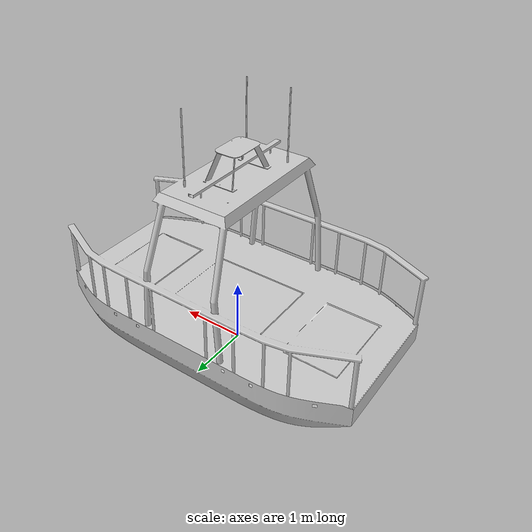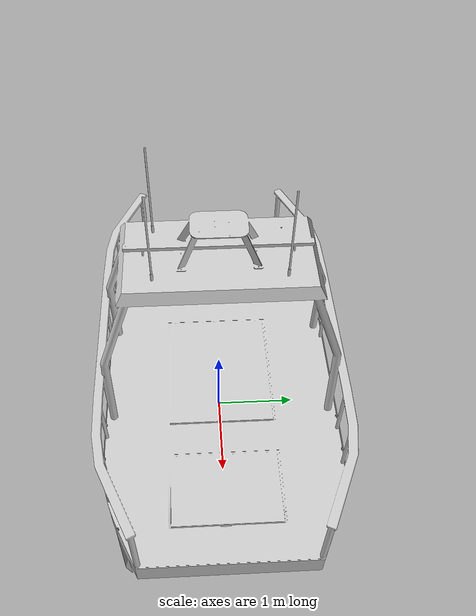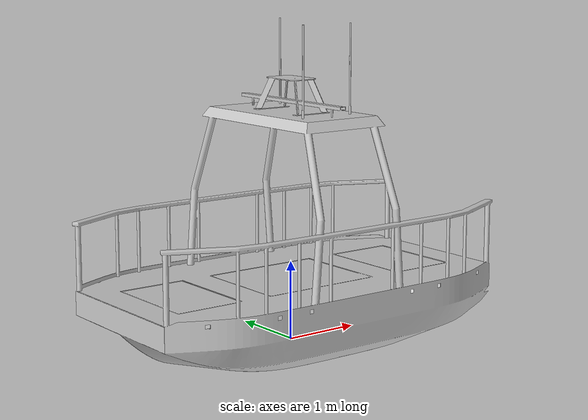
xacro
<?xml version="1.0"?>
<robot xmlns:xacro="http://www.ros.org/wiki/xacro" name="milliAmpere1">
    <material name="blue">
        <color rgba="0.8 0.8 0.8 1"/>
    </material>
    <link name="base_link">
        <visual>
            <origin xyz="0 0 0" rpy="0 0 0"/>
            <geometry>
                <mesh filename="package://ma1_description/meshes/ma1.stl"/>
            </geometry>
            <material name="blue"/>
        </visual>
    </link>

</robot>
